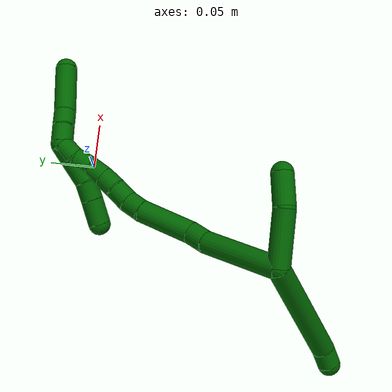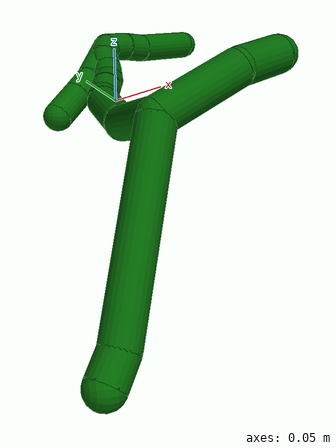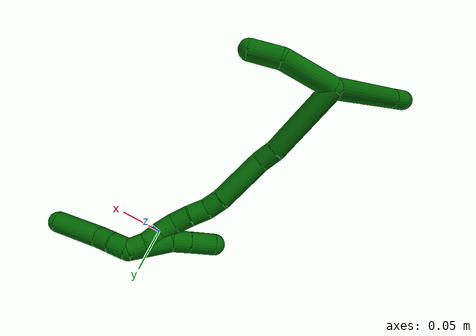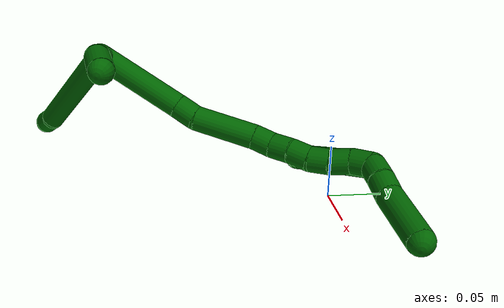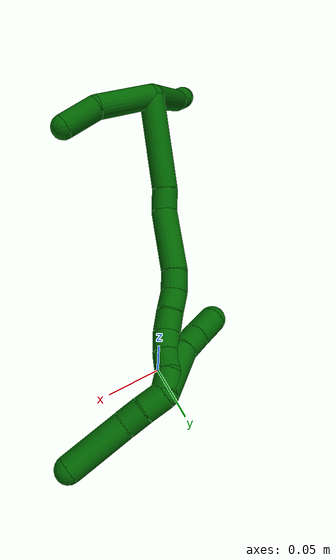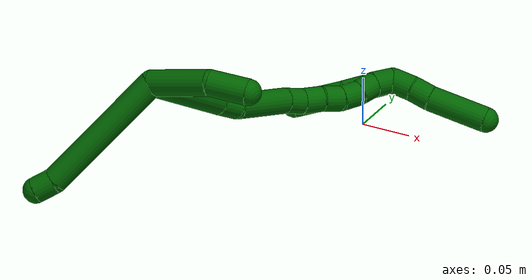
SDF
<sdf version="1.7">
 <world name="default">
  <model name="6">
   <static>0</static>
   <link name="6">
    <collision name="collision-cylinder-e_1_2_8">
     <pose>-0.060309 -0.016633 0.017267 0.766676 -1.19242 -0.53425</pose>
     <geometry><cylinder><radius>0.0125</radius><length>0.1298</length></cylinder></geometry>
     <surface>
      <friction><ode><mu>1.16</mu><mu2>1.16</mu2><slip1>0</slip1><slip2>0</slip2></ode></friction>
      <contact><ode><kp>1e+06</kp><kd>1</kd><max_vel>0</max_vel><min_depth>0.001</min_depth></ode></contact>
     </surface>
    </collision>
    <visual name="visual-cylinder-e_1_2_8">
     <pose>-0.060309 -0.016633 0.017267 0.766676 -1.19242 -0.53425</pose>
     <geometry><cylinder><radius>0.0125</radius><length>0.1298</length></cylinder></geometry>
     <material><ambient>0 0.392157 0.003922 1</ambient></material>
    </visual>
    <collision name="collision-cylinder-e_2_8_6">
     <pose>-0.128548 -0.036796 0.039698 0.599873 -0.902915 -0.29768</pose>
     <geometry><cylinder><radius>0.0125</radius><length>0.0202</length></cylinder></geometry>
     <surface>
      <friction><ode><mu>1.16</mu><mu2>1.16</mu2><slip1>0</slip1><slip2>0</slip2></ode></friction>
      <contact><ode><kp>1e+06</kp><kd>1</kd><max_vel>0</max_vel><min_depth>0.001</min_depth></ode></contact>
     </surface>
    </collision>
    <visual name="visual-cylinder-e_2_8_6">
     <pose>-0.128548 -0.036796 0.039698 0.599873 -0.902915 -0.29768</pose>
     <geometry><cylinder><radius>0.0125</radius><length>0.0202</length></cylinder></geometry>
     <material><ambient>0 0.392157 0.003922 1</ambient></material>
    </visual>
    <collision name="collision-cylinder-e_1_2_9">
     <pose>0.014087 0.003449 -0.027644 -3.01745 0.468169 -2.63166</pose>
     <geometry><cylinder><radius>0.0125</radius><length>0.062434</length></cylinder></geometry>
     <surface>
      <friction><ode><mu>1.16</mu><mu2>1.16</mu2><slip1>0</slip1><slip2>0</slip2></ode></friction>
      <contact><ode><kp>1e+06</kp><kd>1</kd><max_vel>0</max_vel><min_depth>0.001</min_depth></ode></contact>
     </surface>
    </collision>
    <visual name="visual-cylinder-e_1_2_9">
     <pose>0.014087 0.003449 -0.027644 -3.01745 0.468169 -2.63166</pose>
     <geometry><cylinder><radius>0.0125</radius><length>0.062434</length></cylinder></geometry>
     <material><ambient>0 0.392157 0.003922 1</ambient></material>
    </visual>
    <collision name="collision-cylinder-e_2_9_5">
     <pose>0.032374 0.013563 -0.072339 -2.76903 0.225524 -1.08211</pose>
     <geometry><cylinder><radius>0.0125</radius><length>0.037566</length></cylinder></geometry>
     <surface>
      <friction><ode><mu>1.16</mu><mu2>1.16</mu2><slip1>0</slip1><slip2>0</slip2></ode></friction>
      <contact><ode><kp>1e+06</kp><kd>1</kd><max_vel>0</max_vel><min_depth>0.001</min_depth></ode></contact>
     </surface>
    </collision>
    <visual name="visual-cylinder-e_2_9_5">
     <pose>0.032374 0.013563 -0.072339 -2.76903 0.225524 -1.08211</pose>
     <geometry><cylinder><radius>0.0125</radius><length>0.037566</length></cylinder></geometry>
     <material><ambient>0 0.392157 0.003922 1</ambient></material>
    </visual>
    <collision name="collision-cylinder-e_1_2_10">
     <pose>-0.004015 0.04645 -0.005819 -1.69541 -0.085557 0.096927</pose>
     <geometry><cylinder><radius>0.0125</radius><length>0.09397</length></cylinder></geometry>
     <surface>
      <friction><ode><mu>1.16</mu><mu2>1.16</mu2><slip1>0</slip1><slip2>0</slip2></ode></friction>
      <contact><ode><kp>1e+06</kp><kd>1</kd><max_vel>0</max_vel><min_depth>0.001</min_depth></ode></contact>
     </surface>
    </collision>
    <visual name="visual-cylinder-e_1_2_10">
     <pose>-0.004015 0.04645 -0.005819 -1.69541 -0.085557 0.096927</pose>
     <geometry><cylinder><radius>0.0125</radius><length>0.09397</length></cylinder></geometry>
     <material><ambient>0 0.392157 0.003922 1</ambient></material>
    </visual>
    <collision name="collision-cylinder-e_2_10_11">
     <pose>-0.008106 0.10365 -0.014863 -1.86235 -0.006728 0.009043</pose>
     <geometry><cylinder><radius>0.0125</radius><length>0.022447</length></cylinder></geometry>
     <surface>
      <friction><ode><mu>1.16</mu><mu2>1.16</mu2><slip1>0</slip1><slip2>0</slip2></ode></friction>
      <contact><ode><kp>1e+06</kp><kd>1</kd><max_vel>0</max_vel><min_depth>0.001</min_depth></ode></contact>
     </surface>
    </collision>
    <visual name="visual-cylinder-e_2_10_11">
     <pose>-0.008106 0.10365 -0.014863 -1.86235 -0.006728 0.009043</pose>
     <geometry><cylinder><radius>0.0125</radius><length>0.022447</length></cylinder></geometry>
     <material><ambient>0 0.392157 0.003922 1</ambient></material>
    </visual>
    <collision name="collision-cylinder-e_3_11_12">
     <pose>-0.001856 0.144714 -0.021172 -1.67214 0.204681 -0.226374</pose>
     <geometry><cylinder><radius>0.0125</radius><length>0.062242</length></cylinder></geometry>
     <surface>
      <friction><ode><mu>1.16</mu><mu2>1.16</mu2><slip1>0</slip1><slip2>0</slip2></ode></friction>
      <contact><ode><kp>1e+06</kp><kd>1</kd><max_vel>0</max_vel><min_depth>0.001</min_depth></ode></contact>
     </surface>
    </collision>
    <visual name="visual-cylinder-e_3_11_12">
     <pose>-0.001856 0.144714 -0.021172 -1.67214 0.204681 -0.226374</pose>
     <geometry><cylinder><radius>0.0125</radius><length>0.062242</length></cylinder></geometry>
     <material><ambient>0 0.392157 0.003922 1</ambient></material>
    </visual>
    <collision name="collision-cylinder-e_4_12_13">
     <pose>0.006188 0.184551 -0.027128 -1.86386 0.171092 -0.229885</pose>
     <geometry><cylinder><radius>0.0125</radius><length>0.020186</length></cylinder></geometry>
     <surface>
      <friction><ode><mu>1.16</mu><mu2>1.16</mu2><slip1>0</slip1><slip2>0</slip2></ode></friction>
      <contact><ode><kp>1e+06</kp><kd>1</kd><max_vel>0</max_vel><min_depth>0.001</min_depth></ode></contact>
     </surface>
    </collision>
    <visual name="visual-cylinder-e_4_12_13">
     <pose>0.006188 0.184551 -0.027128 -1.86386 0.171092 -0.229885</pose>
     <geometry><cylinder><radius>0.0125</radius><length>0.020186</length></cylinder></geometry>
     <material><ambient>0 0.392157 0.003922 1</ambient></material>
    </visual>
    <collision name="collision-cylinder-e_5_13_14">
     <pose>0.011887 0.202622 -0.034303 -2.03691 0.394138 -0.626562</pose>
     <geometry><cylinder><radius>0.0125</radius><length>0.020732</length></cylinder></geometry>
     <surface>
      <friction><ode><mu>1.16</mu><mu2>1.16</mu2><slip1>0</slip1><slip2>0</slip2></ode></friction>
      <contact><ode><kp>1e+06</kp><kd>1</kd><max_vel>0</max_vel><min_depth>0.001</min_depth></ode></contact>
     </surface>
    </collision>
    <visual name="visual-cylinder-e_5_13_14">
     <pose>0.011887 0.202622 -0.034303 -2.03691 0.394138 -0.626562</pose>
     <geometry><cylinder><radius>0.0125</radius><length>0.020732</length></cylinder></geometry>
     <material><ambient>0 0.392157 0.003922 1</ambient></material>
    </visual>
    <collision name="collision-cylinder-e_6_14_15">
     <pose>0.018537 0.220115 -0.042579 -1.98901 0.266303 -0.406517</pose>
     <geometry><cylinder><radius>0.0125</radius><length>0.020288</length></cylinder></geometry>
     <surface>
      <friction><ode><mu>1.16</mu><mu2>1.16</mu2><slip1>0</slip1><slip2>0</slip2></ode></friction>
      <contact><ode><kp>1e+06</kp><kd>1</kd><max_vel>0</max_vel><min_depth>0.001</min_depth></ode></contact>
     </surface>
    </collision>
    <visual name="visual-cylinder-e_6_14_15">
     <pose>0.018537 0.220115 -0.042579 -1.98901 0.266303 -0.406517</pose>
     <geometry><cylinder><radius>0.0125</radius><length>0.020288</length></cylinder></geometry>
     <material><ambient>0 0.392157 0.003922 1</ambient></material>
    </visual>
    <collision name="collision-cylinder-e_7_15_16">
     <pose>0.0258 0.237663 -0.048842 -1.83075 0.476192 -0.611572</pose>
     <geometry><cylinder><radius>0.0125</radius><length>0.020038</length></cylinder></geometry>
     <surface>
      <friction><ode><mu>1.16</mu><mu2>1.16</mu2><slip1>0</slip1><slip2>0</slip2></ode></friction>
      <contact><ode><kp>1e+06</kp><kd>1</kd><max_vel>0</max_vel><min_depth>0.001</min_depth></ode></contact>
     </surface>
    </collision>
    <visual name="visual-cylinder-e_7_15_16">
     <pose>0.0258 0.237663 -0.048842 -1.83075 0.476192 -0.611572</pose>
     <geometry><cylinder><radius>0.0125</radius><length>0.020038</length></cylinder></geometry>
     <material><ambient>0 0.392157 0.003922 1</ambient></material>
    </visual>
    <collision name="collision-cylinder-e_8_16_17">
     <pose>0.036115 0.254423 -0.05204 -1.68187 0.609024 -0.675644</pose>
     <geometry><cylinder><radius>0.0125</radius><length>0.020009</length></cylinder></geometry>
     <surface>
      <friction><ode><mu>1.16</mu><mu2>1.16</mu2><slip1>0</slip1><slip2>0</slip2></ode></friction>
      <contact><ode><kp>1e+06</kp><kd>1</kd><max_vel>0</max_vel><min_depth>0.001</min_depth></ode></contact>
     </surface>
    </collision>
    <visual name="visual-cylinder-e_8_16_17">
     <pose>0.036115 0.254423 -0.05204 -1.68187 0.609024 -0.675644</pose>
     <geometry><cylinder><radius>0.0125</radius><length>0.020009</length></cylinder></geometry>
     <material><ambient>0 0.392157 0.003922 1</ambient></material>
    </visual>
    <collision name="collision-cylinder-e_9_17_1">
     <pose>0.04662 0.2704 -0.057055 -2.05418 0.496161 -0.793619</pose>
     <geometry><cylinder><radius>0.0125</radius><length>0.02009</length></cylinder></geometry>
     <surface>
      <friction><ode><mu>1.16</mu><mu2>1.16</mu2><slip1>0</slip1><slip2>0</slip2></ode></friction>
      <contact><ode><kp>1e+06</kp><kd>1</kd><max_vel>0</max_vel><min_depth>0.001</min_depth></ode></contact>
     </surface>
    </collision>
    <visual name="visual-cylinder-e_9_17_1">
     <pose>0.04662 0.2704 -0.057055 -2.05418 0.496161 -0.793619</pose>
     <geometry><cylinder><radius>0.0125</radius><length>0.02009</length></cylinder></geometry>
     <material><ambient>0 0.392157 0.003922 1</ambient></material>
    </visual>
    <collision name="collision-cylinder-e_1_1_18">
     <pose>0.052196 0.282011 -0.071411 -2.78744 0.072549 -0.400162</pose>
     <geometry><cylinder><radius>0.0125</radius><length>0.021913</length></cylinder></geometry>
     <surface>
      <friction><ode><mu>1.16</mu><mu2>1.16</mu2><slip1>0</slip1><slip2>0</slip2></ode></friction>
      <contact><ode><kp>1e+06</kp><kd>1</kd><max_vel>0</max_vel><min_depth>0.001</min_depth></ode></contact>
     </surface>
    </collision>
    <visual name="visual-cylinder-e_1_1_18">
     <pose>0.052196 0.282011 -0.071411 -2.78744 0.072549 -0.400162</pose>
     <geometry><cylinder><radius>0.0125</radius><length>0.021913</length></cylinder></geometry>
     <material><ambient>0 0.392157 0.003922 1</ambient></material>
    </visual>
    <collision name="collision-cylinder-e_2_18_19">
     <pose>0.05254 0.289667 -0.090911 -2.7457 -0.044922 0.223074</pose>
     <geometry><cylinder><radius>0.0125</radius><length>0.020073</length></cylinder></geometry>
     <surface>
      <friction><ode><mu>1.16</mu><mu2>1.16</mu2><slip1>0</slip1><slip2>0</slip2></ode></friction>
      <contact><ode><kp>1e+06</kp><kd>1</kd><max_vel>0</max_vel><min_depth>0.001</min_depth></ode></contact>
     </surface>
    </collision>
    <visual name="visual-cylinder-e_2_18_19">
     <pose>0.05254 0.289667 -0.090911 -2.7457 -0.044922 0.223074</pose>
     <geometry><cylinder><radius>0.0125</radius><length>0.020073</length></cylinder></geometry>
     <material><ambient>0 0.392157 0.003922 1</ambient></material>
    </visual>
    <collision name="collision-cylinder-e_3_19_4">
     <pose>0.05456 0.304888 -0.126739 -2.73783 0.085274 -0.411013</pose>
     <geometry><cylinder><radius>0.0125</radius><length>0.058014</length></cylinder></geometry>
     <surface>
      <friction><ode><mu>1.16</mu><mu2>1.16</mu2><slip1>0</slip1><slip2>0</slip2></ode></friction>
      <contact><ode><kp>1e+06</kp><kd>1</kd><max_vel>0</max_vel><min_depth>0.001</min_depth></ode></contact>
     </surface>
    </collision>
    <visual name="visual-cylinder-e_3_19_4">
     <pose>0.05456 0.304888 -0.126739 -2.73783 0.085274 -0.411013</pose>
     <geometry><cylinder><radius>0.0125</radius><length>0.058014</length></cylinder></geometry>
     <material><ambient>0 0.392157 0.003922 1</ambient></material>
    </visual>
    <collision name="collision-cylinder-e_1_1_20">
     <pose>0.036971 0.262444 -0.048447 0.892517 -0.618875 -0.303574</pose>
     <geometry><cylinder><radius>0.0125</radius><length>0.049753</length></cylinder></geometry>
     <surface>
      <friction><ode><mu>1.16</mu><mu2>1.16</mu2><slip1>0</slip1><slip2>0</slip2></ode></friction>
      <contact><ode><kp>1e+06</kp><kd>1</kd><max_vel>0</max_vel><min_depth>0.001</min_depth></ode></contact>
     </surface>
    </collision>
    <visual name="visual-cylinder-e_1_1_20">
     <pose>0.036971 0.262444 -0.048447 0.892517 -0.618875 -0.303574</pose>
     <geometry><cylinder><radius>0.0125</radius><length>0.049753</length></cylinder></geometry>
     <material><ambient>0 0.392157 0.003922 1</ambient></material>
    </visual>
    <collision name="collision-cylinder-e_2_20_21">
     <pose>0.015981 0.242266 -0.028558 0.55013 -0.661984 -0.193355</pose>
     <geometry><cylinder><radius>0.0125</radius><length>0.021341</length></cylinder></geometry>
     <surface>
      <friction><ode><mu>1.16</mu><mu2>1.16</mu2><slip1>0</slip1><slip2>0</slip2></ode></friction>
      <contact><ode><kp>1e+06</kp><kd>1</kd><max_vel>0</max_vel><min_depth>0.001</min_depth></ode></contact>
     </surface>
    </collision>
    <visual name="visual-cylinder-e_2_20_21">
     <pose>0.015981 0.242266 -0.028558 0.55013 -0.661984 -0.193355</pose>
     <geometry><cylinder><radius>0.0125</radius><length>0.021341</length></cylinder></geometry>
     <material><ambient>0 0.392157 0.003922 1</ambient></material>
    </visual>
    <collision name="collision-cylinder-e_3_21_3">
     <pose>0.000524 0.232127 -0.011546 0.528076 -0.663187 -0.185631</pose>
     <geometry><cylinder><radius>0.0125</radius><length>0.028906</length></cylinder></geometry>
     <surface>
      <friction><ode><mu>1.16</mu><mu2>1.16</mu2><slip1>0</slip1><slip2>0</slip2></ode></friction>
      <contact><ode><kp>1e+06</kp><kd>1</kd><max_vel>0</max_vel><min_depth>0.001</min_depth></ode></contact>
     </surface>
    </collision>
    <visual name="visual-cylinder-e_3_21_3">
     <pose>0.000524 0.232127 -0.011546 0.528076 -0.663187 -0.185631</pose>
     <geometry><cylinder><radius>0.0125</radius><length>0.028906</length></cylinder></geometry>
     <material><ambient>0 0.392157 0.003922 1</ambient></material>
    </visual>
    <collision name="collision-sphere-3">
     <pose>-0.008374 0.226388 -0.001708 0 -0 0</pose>
     <geometry><sphere><radius>0.0125</radius></sphere></geometry>
     <surface>
      <friction><ode><mu>1.16</mu><mu2>1.16</mu2><slip1>0</slip1><slip2>0</slip2></ode></friction>
      <contact><ode><kp>1e+06</kp><kd>1</kd><max_vel>0</max_vel><min_depth>0.001</min_depth></ode></contact>
     </surface>
    </collision>
    <visual name="visual-sphere-3">
     <pose>-0.008374 0.226388 -0.001708 0 -0 0</pose>
     <geometry><sphere><radius>0.0125</radius></sphere></geometry>
     <material><ambient>0 0.392157 0.003922 1</ambient></material>
    </visual>
    <collision name="collision-sphere-21">
     <pose>0.009422 0.237866 -0.021384 0 -0 0</pose>
     <geometry><sphere><radius>0.0125</radius></sphere></geometry>
     <surface>
      <friction><ode><mu>1.16</mu><mu2>1.16</mu2><slip1>0</slip1><slip2>0</slip2></ode></friction>
      <contact><ode><kp>1e+06</kp><kd>1</kd><max_vel>0</max_vel><min_depth>0.001</min_depth></ode></contact>
     </surface>
    </collision>
    <visual name="visual-sphere-21">
     <pose>0.009422 0.237866 -0.021384 0 -0 0</pose>
     <geometry><sphere><radius>0.0125</radius></sphere></geometry>
     <material><ambient>0 0.392157 0.003922 1</ambient></material>
    </visual>
    <collision name="collision-sphere-20">
     <pose>0.02254 0.246666 -0.035733 0 -0 0</pose>
     <geometry><sphere><radius>0.0125</radius></sphere></geometry>
     <surface>
      <friction><ode><mu>1.16</mu><mu2>1.16</mu2><slip1>0</slip1><slip2>0</slip2></ode></friction>
      <contact><ode><kp>1e+06</kp><kd>1</kd><max_vel>0</max_vel><min_depth>0.001</min_depth></ode></contact>
     </surface>
    </collision>
    <visual name="visual-sphere-20">
     <pose>0.02254 0.246666 -0.035733 0 -0 0</pose>
     <geometry><sphere><radius>0.0125</radius></sphere></geometry>
     <material><ambient>0 0.392157 0.003922 1</ambient></material>
    </visual>
    <collision name="collision-sphere-4">
     <pose>0.05703 0.316243 -0.153317 0 -0 0</pose>
     <geometry><sphere><radius>0.0125</radius></sphere></geometry>
     <surface>
      <friction><ode><mu>1.16</mu><mu2>1.16</mu2><slip1>0</slip1><slip2>0</slip2></ode></friction>
      <contact><ode><kp>1e+06</kp><kd>1</kd><max_vel>0</max_vel><min_depth>0.001</min_depth></ode></contact>
     </surface>
    </collision>
    <visual name="visual-sphere-4">
     <pose>0.05703 0.316243 -0.153317 0 -0 0</pose>
     <geometry><sphere><radius>0.0125</radius></sphere></geometry>
     <material><ambient>0 0.392157 0.003922 1</ambient></material>
    </visual>
    <collision name="collision-sphere-10">
     <pose>-0.00803 0.0929 -0.011637 0 -0 0</pose>
     <geometry><sphere><radius>0.0125</radius></sphere></geometry>
     <surface>
      <friction><ode><mu>1.16</mu><mu2>1.16</mu2><slip1>0</slip1><slip2>0</slip2></ode></friction>
      <contact><ode><kp>1e+06</kp><kd>1</kd><max_vel>0</max_vel><min_depth>0.001</min_depth></ode></contact>
     </surface>
    </collision>
    <visual name="visual-sphere-10">
     <pose>-0.00803 0.0929 -0.011637 0 -0 0</pose>
     <geometry><sphere><radius>0.0125</radius></sphere></geometry>
     <material><ambient>0 0.392157 0.003922 1</ambient></material>
    </visual>
    <collision name="collision-sphere-5">
     <pose>0.036574 0.020227 -0.08939 0 -0 0</pose>
     <geometry><sphere><radius>0.0125</radius></sphere></geometry>
     <surface>
      <friction><ode><mu>1.16</mu><mu2>1.16</mu2><slip1>0</slip1><slip2>0</slip2></ode></friction>
      <contact><ode><kp>1e+06</kp><kd>1</kd><max_vel>0</max_vel><min_depth>0.001</min_depth></ode></contact>
     </surface>
    </collision>
    <visual name="visual-sphere-5">
     <pose>0.036574 0.020227 -0.08939 0 -0 0</pose>
     <geometry><sphere><radius>0.0125</radius></sphere></geometry>
     <material><ambient>0 0.392157 0.003922 1</ambient></material>
    </visual>
    <collision name="collision-sphere-6">
     <pose>-0.136478 -0.040328 0.044861 0 -0 0</pose>
     <geometry><sphere><radius>0.0125</radius></sphere></geometry>
     <surface>
      <friction><ode><mu>1.16</mu><mu2>1.16</mu2><slip1>0</slip1><slip2>0</slip2></ode></friction>
      <contact><ode><kp>1e+06</kp><kd>1</kd><max_vel>0</max_vel><min_depth>0.001</min_depth></ode></contact>
     </surface>
    </collision>
    <visual name="visual-sphere-6">
     <pose>-0.136478 -0.040328 0.044861 0 -0 0</pose>
     <geometry><sphere><radius>0.0125</radius></sphere></geometry>
     <material><ambient>0 0.392157 0.003922 1</ambient></material>
    </visual>
    <collision name="collision-sphere-9">
     <pose>0.028174 0.006899 -0.055287 0 -0 0</pose>
     <geometry><sphere><radius>0.0125</radius></sphere></geometry>
     <surface>
      <friction><ode><mu>1.16</mu><mu2>1.16</mu2><slip1>0</slip1><slip2>0</slip2></ode></friction>
      <contact><ode><kp>1e+06</kp><kd>1</kd><max_vel>0</max_vel><min_depth>0.001</min_depth></ode></contact>
     </surface>
    </collision>
    <visual name="visual-sphere-9">
     <pose>0.028174 0.006899 -0.055287 0 -0 0</pose>
     <geometry><sphere><radius>0.0125</radius></sphere></geometry>
     <material><ambient>0 0.392157 0.003922 1</ambient></material>
    </visual>
    <collision name="collision-sphere-2">
     <geometry><sphere><radius>0.0125</radius></sphere></geometry>
     <surface>
      <friction><ode><mu>1.16</mu><mu2>1.16</mu2><slip1>0</slip1><slip2>0</slip2></ode></friction>
      <contact><ode><kp>1e+06</kp><kd>1</kd><max_vel>0</max_vel><min_depth>0.001</min_depth></ode></contact>
     </surface>
    </collision>
    <visual name="visual-sphere-2">
     <geometry><sphere><radius>0.0125</radius></sphere></geometry>
     <material><ambient>0 0.392157 0.003922 1</ambient></material>
    </visual>
    <collision name="collision-sphere-19">
     <pose>0.052089 0.293534 -0.100162 0 -0 0</pose>
     <geometry><sphere><radius>0.0125</radius></sphere></geometry>
     <surface>
      <friction><ode><mu>1.16</mu><mu2>1.16</mu2><slip1>0</slip1><slip2>0</slip2></ode></friction>
      <contact><ode><kp>1e+06</kp><kd>1</kd><max_vel>0</max_vel><min_depth>0.001</min_depth></ode></contact>
     </surface>
    </collision>
    <visual name="visual-sphere-19">
     <pose>0.052089 0.293534 -0.100162 0 -0 0</pose>
     <geometry><sphere><radius>0.0125</radius></sphere></geometry>
     <material><ambient>0 0.392157 0.003922 1</ambient></material>
    </visual>
    <collision name="collision-sphere-8">
     <pose>-0.120618 -0.033265 0.034535 0 -0 0</pose>
     <geometry><sphere><radius>0.0125</radius></sphere></geometry>
     <surface>
      <friction><ode><mu>1.16</mu><mu2>1.16</mu2><slip1>0</slip1><slip2>0</slip2></ode></friction>
      <contact><ode><kp>1e+06</kp><kd>1</kd><max_vel>0</max_vel><min_depth>0.001</min_depth></ode></contact>
     </surface>
    </collision>
    <visual name="visual-sphere-8">
     <pose>-0.120618 -0.033265 0.034535 0 -0 0</pose>
     <geometry><sphere><radius>0.0125</radius></sphere></geometry>
     <material><ambient>0 0.392157 0.003922 1</ambient></material>
    </visual>
    <collision name="collision-sphere-11">
     <pose>-0.008181 0.1144 -0.018089 0 -0 0</pose>
     <geometry><sphere><radius>0.0125</radius></sphere></geometry>
     <surface>
      <friction><ode><mu>1.16</mu><mu2>1.16</mu2><slip1>0</slip1><slip2>0</slip2></ode></friction>
      <contact><ode><kp>1e+06</kp><kd>1</kd><max_vel>0</max_vel><min_depth>0.001</min_depth></ode></contact>
     </surface>
    </collision>
    <visual name="visual-sphere-11">
     <pose>-0.008181 0.1144 -0.018089 0 -0 0</pose>
     <geometry><sphere><radius>0.0125</radius></sphere></geometry>
     <material><ambient>0 0.392157 0.003922 1</ambient></material>
    </visual>
    <collision name="collision-sphere-12">
     <pose>0.00447 0.175029 -0.024255 0 -0 0</pose>
     <geometry><sphere><radius>0.0125</radius></sphere></geometry>
     <surface>
      <friction><ode><mu>1.16</mu><mu2>1.16</mu2><slip1>0</slip1><slip2>0</slip2></ode></friction>
      <contact><ode><kp>1e+06</kp><kd>1</kd><max_vel>0</max_vel><min_depth>0.001</min_depth></ode></contact>
     </surface>
    </collision>
    <visual name="visual-sphere-12">
     <pose>0.00447 0.175029 -0.024255 0 -0 0</pose>
     <geometry><sphere><radius>0.0125</radius></sphere></geometry>
     <material><ambient>0 0.392157 0.003922 1</ambient></material>
    </visual>
    <collision name="collision-sphere-13">
     <pose>0.007907 0.194072 -0.030001 0 -0 0</pose>
     <geometry><sphere><radius>0.0125</radius></sphere></geometry>
     <surface>
      <friction><ode><mu>1.16</mu><mu2>1.16</mu2><slip1>0</slip1><slip2>0</slip2></ode></friction>
      <contact><ode><kp>1e+06</kp><kd>1</kd><max_vel>0</max_vel><min_depth>0.001</min_depth></ode></contact>
     </surface>
    </collision>
    <visual name="visual-sphere-13">
     <pose>0.007907 0.194072 -0.030001 0 -0 0</pose>
     <geometry><sphere><radius>0.0125</radius></sphere></geometry>
     <material><ambient>0 0.392157 0.003922 1</ambient></material>
    </visual>
    <collision name="collision-sphere-14">
     <pose>0.015868 0.211173 -0.038604 0 -0 0</pose>
     <geometry><sphere><radius>0.0125</radius></sphere></geometry>
     <surface>
      <friction><ode><mu>1.16</mu><mu2>1.16</mu2><slip1>0</slip1><slip2>0</slip2></ode></friction>
      <contact><ode><kp>1e+06</kp><kd>1</kd><max_vel>0</max_vel><min_depth>0.001</min_depth></ode></contact>
     </surface>
    </collision>
    <visual name="visual-sphere-14">
     <pose>0.015868 0.211173 -0.038604 0 -0 0</pose>
     <geometry><sphere><radius>0.0125</radius></sphere></geometry>
     <material><ambient>0 0.392157 0.003922 1</ambient></material>
    </visual>
    <collision name="collision-sphere-15">
     <pose>0.021207 0.229058 -0.046553 0 -0 0</pose>
     <geometry><sphere><radius>0.0125</radius></sphere></geometry>
     <surface>
      <friction><ode><mu>1.16</mu><mu2>1.16</mu2><slip1>0</slip1><slip2>0</slip2></ode></friction>
      <contact><ode><kp>1e+06</kp><kd>1</kd><max_vel>0</max_vel><min_depth>0.001</min_depth></ode></contact>
     </surface>
    </collision>
    <visual name="visual-sphere-15">
     <pose>0.021207 0.229058 -0.046553 0 -0 0</pose>
     <geometry><sphere><radius>0.0125</radius></sphere></geometry>
     <material><ambient>0 0.392157 0.003922 1</ambient></material>
    </visual>
    <collision name="collision-sphere-16">
     <pose>0.030392 0.246268 -0.05113 0 -0 0</pose>
     <geometry><sphere><radius>0.0125</radius></sphere></geometry>
     <surface>
      <friction><ode><mu>1.16</mu><mu2>1.16</mu2><slip1>0</slip1><slip2>0</slip2></ode></friction>
      <contact><ode><kp>1e+06</kp><kd>1</kd><max_vel>0</max_vel><min_depth>0.001</min_depth></ode></contact>
     </surface>
    </collision>
    <visual name="visual-sphere-16">
     <pose>0.030392 0.246268 -0.05113 0 -0 0</pose>
     <geometry><sphere><radius>0.0125</radius></sphere></geometry>
     <material><ambient>0 0.392157 0.003922 1</ambient></material>
    </visual>
    <collision name="collision-sphere-17">
     <pose>0.041838 0.262578 -0.05295 0 -0 0</pose>
     <geometry><sphere><radius>0.0125</radius></sphere></geometry>
     <surface>
      <friction><ode><mu>1.16</mu><mu2>1.16</mu2><slip1>0</slip1><slip2>0</slip2></ode></friction>
      <contact><ode><kp>1e+06</kp><kd>1</kd><max_vel>0</max_vel><min_depth>0.001</min_depth></ode></contact>
     </surface>
    </collision>
    <visual name="visual-sphere-17">
     <pose>0.041838 0.262578 -0.05295 0 -0 0</pose>
     <geometry><sphere><radius>0.0125</radius></sphere></geometry>
     <material><ambient>0 0.392157 0.003922 1</ambient></material>
    </visual>
    <collision name="collision-sphere-1">
     <pose>0.051402 0.278221 -0.061161 0 -0 0</pose>
     <geometry><sphere><radius>0.0125</radius></sphere></geometry>
     <surface>
      <friction><ode><mu>1.16</mu><mu2>1.16</mu2><slip1>0</slip1><slip2>0</slip2></ode></friction>
      <contact><ode><kp>1e+06</kp><kd>1</kd><max_vel>0</max_vel><min_depth>0.001</min_depth></ode></contact>
     </surface>
    </collision>
    <visual name="visual-sphere-1">
     <pose>0.051402 0.278221 -0.061161 0 -0 0</pose>
     <geometry><sphere><radius>0.0125</radius></sphere></geometry>
     <material><ambient>0 0.392157 0.003922 1</ambient></material>
    </visual>
    <collision name="collision-sphere-18">
     <pose>0.052991 0.285801 -0.08166 0 -0 0</pose>
     <geometry><sphere><radius>0.0125</radius></sphere></geometry>
     <surface>
      <friction><ode><mu>1.16</mu><mu2>1.16</mu2><slip1>0</slip1><slip2>0</slip2></ode></friction>
      <contact><ode><kp>1e+06</kp><kd>1</kd><max_vel>0</max_vel><min_depth>0.001</min_depth></ode></contact>
     </surface>
    </collision>
    <visual name="visual-sphere-18">
     <pose>0.052991 0.285801 -0.08166 0 -0 0</pose>
     <geometry><sphere><radius>0.0125</radius></sphere></geometry>
     <material><ambient>0 0.392157 0.003922 1</ambient></material>
    </visual>
    <inertial>
     <pose>0.001972 0.127757 -0.030644 0 -0 0</pose>
     <mass>0.75</mass>
     <inertia>
      <ixx>0.000109</ixx>
      <ixy>0</ixy>
      <ixz>0</ixz>
      <iyy>0.000137</iyy>
      <iyz>0</iyz>
      <izz>0.000101</izz>
     </inertia>
    </inertial>
   </link>
   <pose>-0.110648 -0.214678 0.11195 -1.20566 -1.12214 0.956324</pose>
  </model>
 </world>
</sdf>
